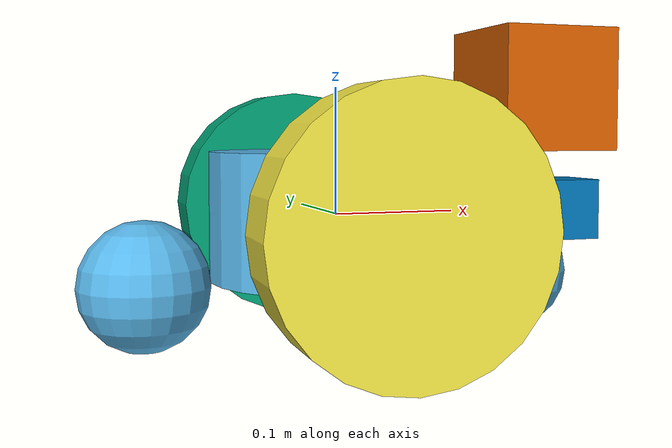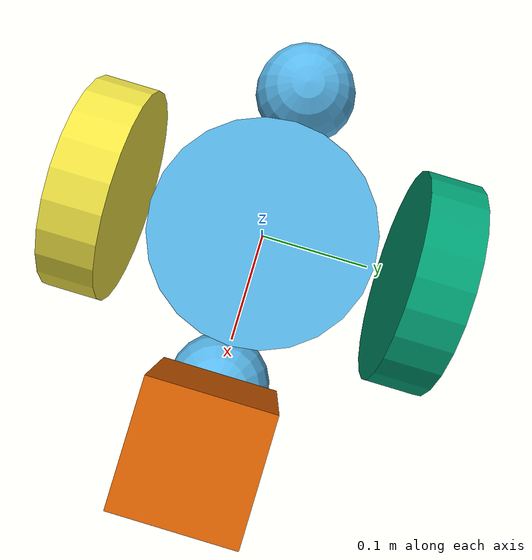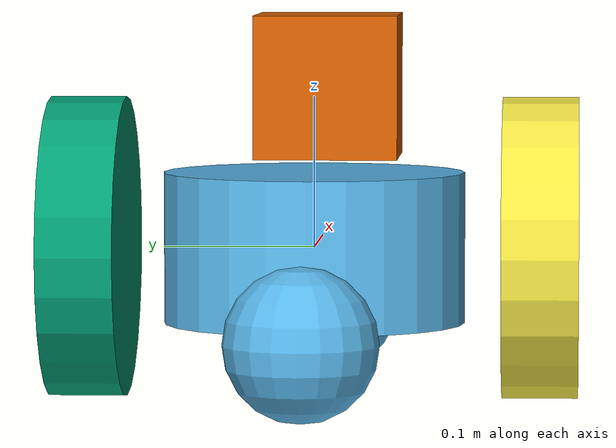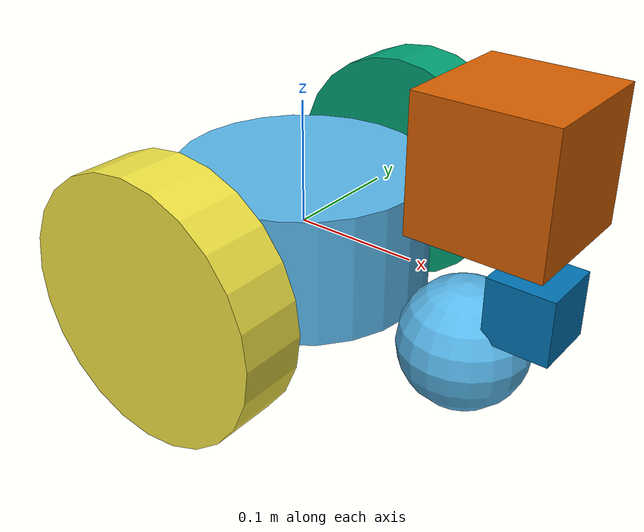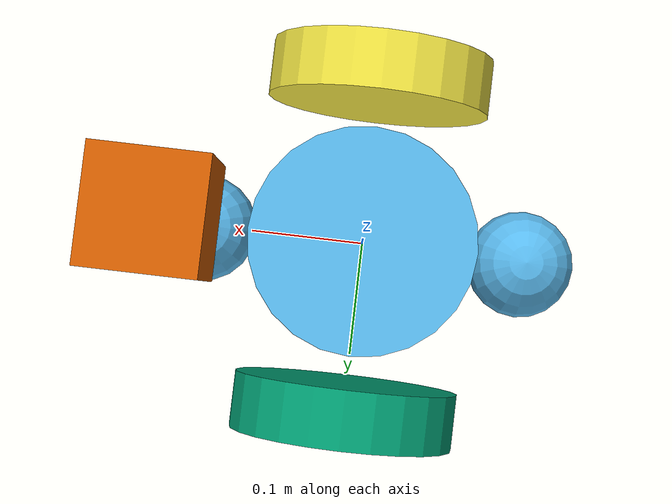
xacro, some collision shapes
<?xml version='1.0'?>
<robot name="ramy_bot" xmlns:xacro="http://www.ros.org/wiki/xacro">

<xacro:include filename="$(find ramy_bot)/urdf/ramy_bot.gazebo" />

<link name="robot_footprint"></link>

  <joint name="robot_footprint_joint" type="fixed">
    <origin xyz="0 0 0" rpy="0 0 0" />
    <parent link="robot_footprint"/>
    <child link="chassis" />
  </joint>

  <link name='chassis'>
    <pose>0 0 0.1 0 0 0</pose>
    <inertial>
      <mass value="15.0"/>
      <origin xyz="0.0 0 0" rpy=" 0 0 0"/>
      <inertia
          ixx="0.1" ixy="0" ixz="0"
          iyy="0.1" iyz="0"
          izz="0.1"
      />
    </inertial>
    <collision name='collision'>
      <origin xyz="0 0 0" rpy=" 0 0 0"/>
      <geometry>
        <box size=".4 .2 .1"/>
      </geometry>
    </collision>
    <visual name='chassis_visual'>
      <origin xyz="0 0 0" rpy=" 0 0 0"/>
      <geometry>
        <cylinder radius="0.1" length="0.1"/>
      </geometry>
    </visual>
    <collision name='back_caster_collision'>
      <origin xyz="-0.15 0 -0.05" rpy=" 0 0 0"/>
      <geometry>
        <sphere radius="0.0499"/>
      </geometry>
      <surface>
        <friction>
          <ode>
            <mu>0</mu>
            <mu2>0</mu2>
            <slip1>1.0</slip1>
            <slip2>1.0</slip2>
          </ode>
        </friction>
      </surface>
    </collision>
    <visual name='back_caster_visual'>
      <origin xyz="-0.15 0 -0.05" rpy=" 0 0 0"/>
      <geometry>
        <sphere radius="0.0499"/>
      </geometry>
    </visual>
    <collision name='front_caster_collision'>
      <origin xyz="0.15 0 -0.05" rpy=" 0 0 0"/>
      <geometry>
        <sphere radius="0.05"/>
      </geometry>
      <surface>
        <friction>
          <ode>
            <mu>0</mu>
            <mu2>0</mu2>
            <slip1>1.0</slip1>
            <slip2>1.0</slip2>
          </ode>
        </friction>
      </surface>
    </collision>
    <visual name='front_caster_visual'>
      <origin xyz="0.15 0 -0.05" rpy=" 0 0 0"/>
      <geometry>
        <sphere radius="0.0499"/>
      </geometry>
    </visual>
  </link>

  <!-- left Wheel link -->
  <link name="left_wheel">
 <collision name="collision">
       <origin xyz="0 0 0" rpy="0 1.5707 1.5707"/>
       <geometry>
<!-- changes here -->
	 <cylinder radius=".1" length=".05" />
	</geometry>
    </collision>
    <inertial>
      <mass value="5.0"/>
      <origin xyz="0 0. 0" rpy=" 0 1.5707 1.5707"/>
      <inertia
          ixx="0.1" ixy="0" ixz="0"
          iyy="0.1" iyz="0"
          izz="0.1"
      />
    </inertial>
    <collision name="collision">
       <geometry>
	 <cylinder radius=".1" length=".05" />
	</geometry>
    </collision>
    <visual name="visual">
      <origin xyz="0 0. 0" rpy="0 1.5707 1.5707"/>
      <geometry>
	 <cylinder radius=".1" length=".05" />
	</geometry>
    </visual>
  </link>
  <!-- left wheel joint -->
  <joint type="continuous" name="left_wheel_hinge">
    <origin xyz="0 0.15 0" rpy="0 0 0"/>
    <child link="left_wheel"/>
    <parent link="chassis"/>
    <axis xyz="0 1 0" rpy="0 0 0"/>
    <limit effort="10000" velocity="1000"/>
    <joint_properties damping="1.0" friction="1.0"/>
  </joint>
  <!-- right Wheel link -->
  <link name="right_wheel">
 <collision name="collision">
       <origin xyz="0 0 0" rpy="0 1.5707 1.5707"/>
       <geometry>
	 <cylinder radius=".1" length=".05" />
	</geometry>
    </collision>
    <inertial>
      <mass value="5.0"/>
      <origin xyz="0 0 0" rpy="0 1.5707 1.5707"/>
      <inertia
          ixx="0.1" ixy="0" ixz="0"
          iyy="0.1" iyz="0"
          izz="0.1"
      />		a
    </inertial>
    <collision name="collision">
    <geometry>
	 <cylinder radius=".1" length=".05" />
	</geometry>    </collision>
    <visual name="visual">
      <origin xyz="0 0 0" rpy="0 1.5707 1.5707"/>
     <geometry>
	 <cylinder radius=".1" length=".05" />
	</geometry>
    </visual>
  </link>
  <!-- right wheel joint -->
  <joint type="continuous" name="right_wheel_hinge">
    <origin xyz="0 -0.15 0" rpy="0 0 0"/>
    <child link="right_wheel"/>
    <parent link="chassis"/>
    <axis xyz="0 1 0" rpy="0 0 0"/>
    <limit effort="10000" velocity="1000"/>
    <joint_properties damping="1.0" friction="1.0"/>
  </joint>

<link name='camera'>
        <inertial>
            <mass value="0.1"/>
            <origin xyz="0.0 0 0" rpy=" 0 0 0"/>
            <inertia ixx="1e-6" ixy="0" ixz="0" iyy="1e-6" iyz="0" izz="1e-6"/>
        </inertial>

        <collision name='collision'>
            <origin xyz="0.0 0 0" rpy=" 0 0 0"/>
            <geometry>
                <box size="0.05 0.05 0.05"/>
            </geometry>
        </collision>

        <visual name='camera_visual'>
            <origin xyz="0.0 0 0" rpy=" 0 0 0"/>
            <geometry>
                <box size="0.05 0.05 0.05"/>
            </geometry>
        </visual>
    </link>
    <joint type="fixed" name="camera_joint">
        <origin xyz="0.2 0 0" rpy="0 0 0"/>
        <child link="camera"/>
        <parent link="chassis"/>
    </joint>

    <link name='hokuyo'>
        <inertial>
            <mass value="0.1"/>
            <origin xyz="0.0 0 0" rpy=" 0 0 0"/>
            <inertia ixx="1e-6" ixy="0" ixz="0" iyy="1e-6" iyz="0" izz="1e-6"/>
        </inertial>

        <collision name='collision'>
            <origin xyz="0.0 0 0" rpy=" 0 0 0"/>
            <geometry>
                <box size="0.1 0.1 0.1"/>
            </geometry>
        </collision>

        <visual name='hokuyo_visual'>
            <origin xyz="-0.2 0 0" rpy=" 0 0 0"/>
            <geometry>
                <mesh filename="package://ramy_bot/meshes/hokuyo.dae"/>
            </geometry>
        </visual>
    </link>
    <joint type="fixed" name="hokuyo_joint">
        <origin xyz="0.175 0.0 0.1" rpy="0 0 0"/>
        <child link="hokuyo"/>
        <parent link="chassis"/>
    </joint>

</robot>
